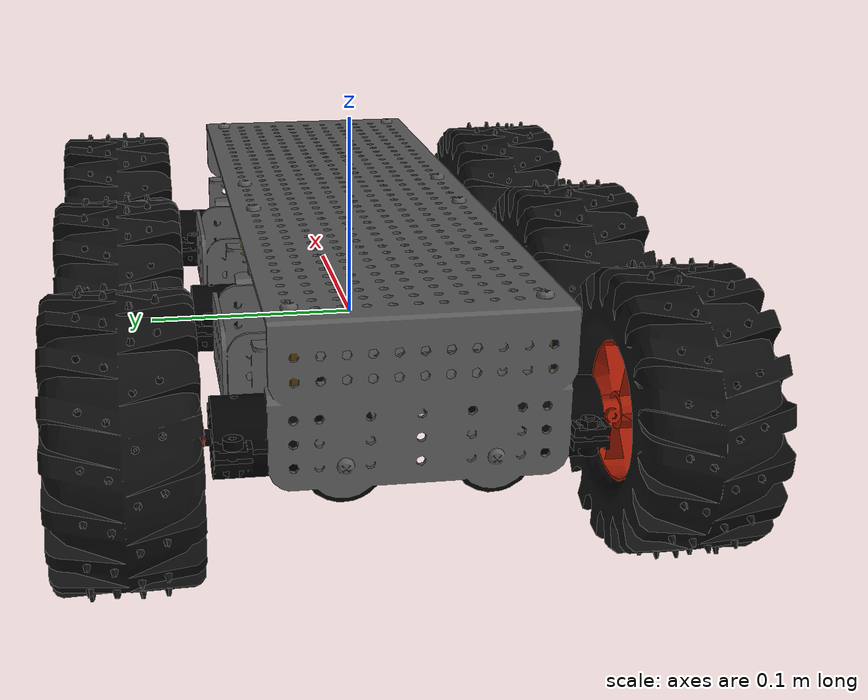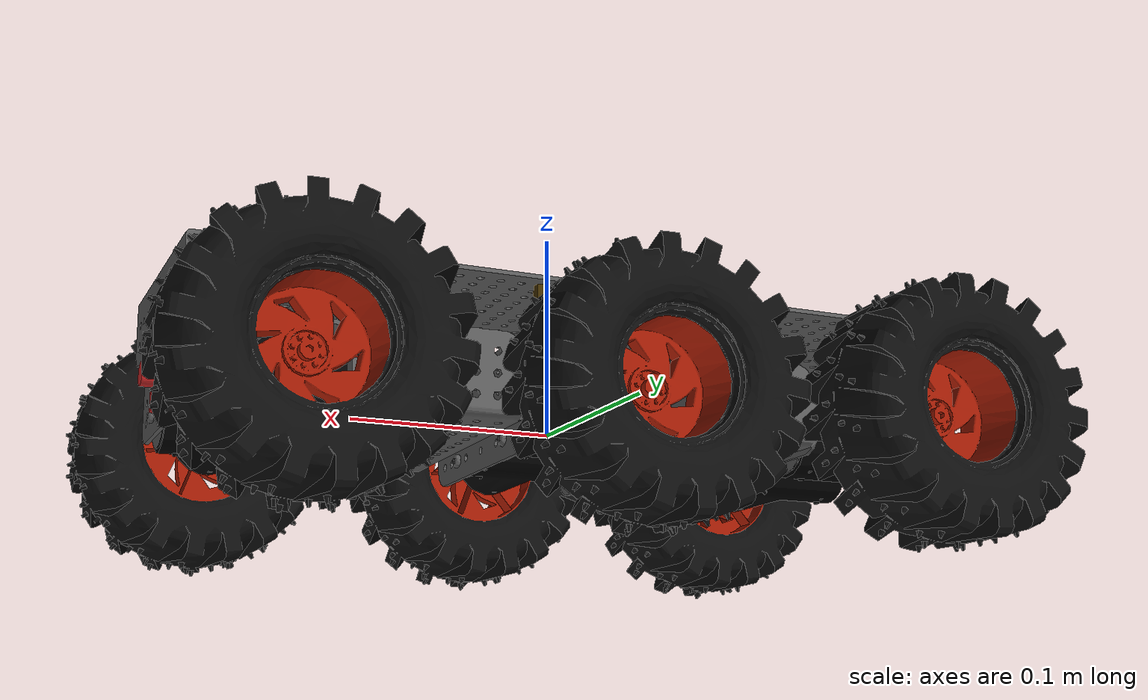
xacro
<?xml version="1.0"?>
<robot xmlns:xacro="http://www.ros.org/wiki/xacro" name="6wd">
    <xacro:include filename="left_right.xacro"/>
    <xacro:include filename="body.xacro"/>
    <xacro:include filename="wheel.xacro"/>
    <xacro:include filename="camera.xacro"/>

    <xacro:property name="wheel_stride" value="0.150" />
    <xacro:property name="camera_size" value="0.03" />

    <xacro:body/>
    <xacro:wheel parent="base_link" side="left"  x_pos="${-wheel_stride}" name="wheel_1_left"  z_offset="0.001"/>
    <xacro:wheel parent="base_link" side="right" x_pos="${-wheel_stride}" name="wheel_1_right" z_offset="0.001"/>
    <xacro:wheel parent="base_link" side="left"  x_pos="0"                name="wheel_2_left"  z_offset="0"/>
    <xacro:wheel parent="base_link" side="right" x_pos="0"                name="wheel_2_right" z_offset="0"/>
    <xacro:wheel parent="base_link" side="left"  x_pos="${wheel_stride}"  name="wheel_3_left"  z_offset="0.001"/>
    <xacro:wheel parent="base_link" side="right" x_pos="${wheel_stride}"  name="wheel_3_right" z_offset="0.001"/>
    <xacro:my_camera/>

    <gazebo>
        <plugin name="car_plugin" filename="libcar_plugin.so">
            <p>0.2</p>
            <i>0.0</i>
            <d>0.0</d>
            <max_velocity>17.0</max_velocity>
        </plugin>
    </gazebo>
</robot>

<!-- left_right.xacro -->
<!-- Change Y-axis sign based on left/right side to allow mirror parts -->
<robot xmlns:xacro="http://www.ros.org/wiki/xacro">
    <xacro:macro name="left_right" params="side">
        <xacro:if value="${side == 'left'}">
            <xacro:property scope="parent" name="x_sign" value="1" />
        </xacro:if>
        <xacro:if value="${side == 'right'}">
            <xacro:property scope="parent" name="x_sign" value="-1" />
        </xacro:if>
    </xacro:macro>
</robot>

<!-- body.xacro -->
<robot xmlns:xacro="http://www.ros.org/wiki/xacro">

    <xacro:macro name="body">
        <link name="base_link">
            <visual>
                <geometry>
                    <mesh filename="package://car_description/meshes/body.dae"/>
                </geometry>
            </visual>
            <collision>
                <origin xyz="0 0 0.0256" rpy="0 0 0"/>
                <geometry>
                    <box size="0.380 0.120 0.072"/>
                </geometry>
            </collision>
            <inertial>
                <mass value="3.3"/>
                <inertia ixx="0.005386" ixy="0.000000" ixz="0.00000"
                                        iyy="0.041136" iyz="0.00000"
                                                       izz="0.04367"/>
            </inertial>
        </link>
    </xacro:macro>
</robot>

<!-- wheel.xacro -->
<robot xmlns:xacro="http://www.ros.org/wiki/xacro">

    <xacro:macro name="wheel" params="parent side x_pos name z_offset">

        <xacro:left_right side="${side}"/>
        <xacro:property name="wheel_width" value="0.06" />

        <link name="${name}">
            <visual>
                <geometry>
                    <mesh filename="package://car_description/meshes/wheel_${side}.dae"/>
                </geometry>
            </visual>
            <collision>
                <origin xyz="0 ${x_sign * (wheel_width/2 + 0.002)} 0" rpy="1.5707 0 0"/>
                <geometry>
                    <cylinder radius="0.063" length="0.06"/>
                </geometry>
            </collision>
            <inertial>
                <mass value="0.150"/>
                <inertia ixx="0.00019384" ixy="0.00000000" ixz="00000000"
                                          iyy="0.00019384" iyz="00000000"
                                                           izz="0.004725"/>
            </inertial>
        </link>

        <joint name="${name}_joint" type="continuous">
            <parent link="${parent}"/>
            <child  link="${name}"/>
            <origin xyz="${x_pos} ${x_sign*0.083} ${z_offset}" rpy="0 0 0"/>
            <axis xyz="0 1 0"/>
        </joint>

    </xacro:macro>
</robot>

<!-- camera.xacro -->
<robot xmlns:xacro="http://www.ros.org/wiki/xacro">

	<xacro:macro name="my_camera">

	  <link name="camera_link">
	    <collision>
	      <geometry>
	        <box size="0.007 0.03 0.03"/>
	      </geometry>
	    </collision>

	    <visual>
	      <geometry>
	        <mesh filename="package://car_description/meshes/camera.dae"/>
	      </geometry>
	      <material name="red"/>
	    </visual>

	    <inertial>
	      <mass value="1e-5" />
	      <inertia ixx="1e-6" ixy="0" ixz="0" iyy="1e-6" iyz="0" izz="1e-6" />
	    </inertial>
	  </link>

	  <joint name="camera_joint" type="fixed">
	    <axis xyz="0 0 0" />
	    <origin xyz="0.185 0 0.012" rpy="0 0 0"/>
	    <parent link="base_link"/>
	    <child link="camera_link"/>
	  </joint>

	  <gazebo reference="camera_link">
        <sensor type="camera" name="camera1">
	      <update_rate>30.0</update_rate>
	      <camera name="head">
	        <horizontal_fov>1.3962634</horizontal_fov>
	        <image>
	          <width>800</width>
	          <height>800</height>
	          <format>R8G8B8</format>
	        </image>
	        <clip>
	          <near>0.02</near>
	          <far>300</far>
	        </clip>
	        <noise>
	          <type>gaussian</type>
	          <mean>0.0</mean>
	          <stddev>0.007</stddev>
	        </noise>
	      </camera>
	      <plugin name="camera_controller" filename="libgazebo_ros_camera.so">
	        <alwaysOn>true</alwaysOn>
	        <updateRate>30.0</updateRate>
	        <cameraName>car_gazebo/camera1</cameraName>
	        <imageTopicName>image_raw</imageTopicName>
	        <cameraInfoTopicName>camera_info</cameraInfoTopicName>
	        <frameName>camera_link</frameName>
	        <hackBaseline>0.07</hackBaseline>
	        <distortionK1>0.0</distortionK1>
	        <distortionK2>0.0</distortionK2>
	        <distortionK3>0.0</distortionK3>
	        <distortionT1>0.0</distortionT1>
	        <distortionT2>0.0</distortionT2>
	      </plugin>
	    </sensor>
      </gazebo>
	</xacro:macro>
</robot>
